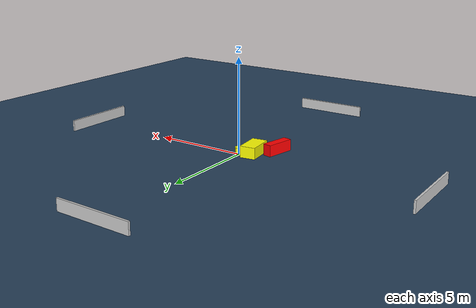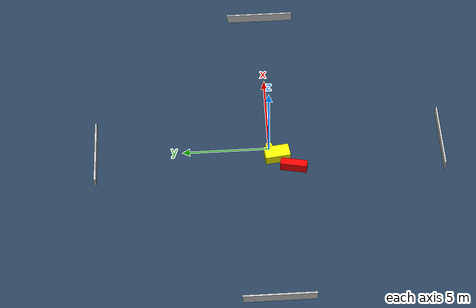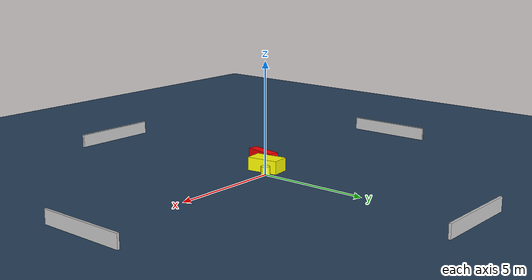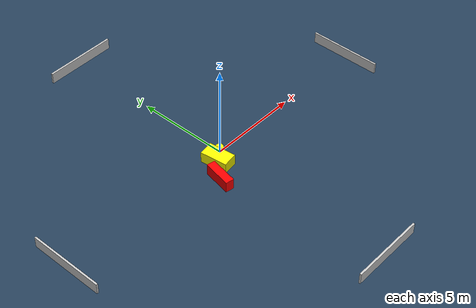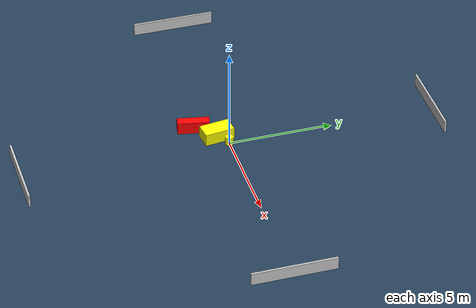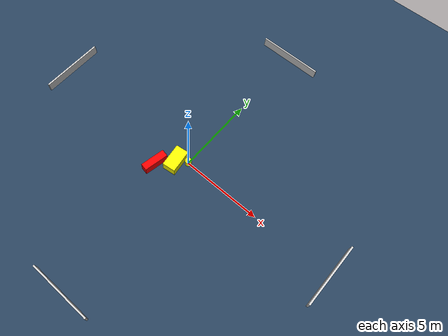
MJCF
<?xml version="1.0" ?>
<mujoco model="generated_environment">
  <option timestep="0.01" integrator="RK4" cone="elliptic"/>
  <default>
    <geom density="1"/>
  </default>
  <asset>
    <texture builtin="gradient" height="3072" name="skybox" rgb1="0.3 0.5 0.7" rgb2="0 0 0" type="skybox" width="512"/>
    <texture builtin="checker" height="300" name="groundplane" rgb1="0.2 0.3 0.4" rgb2="0.1 0.2 0.3" type="2d" width="300"/>
    <material name="groundplane" reflectance="0.2" texrepeat="5 5" texture="groundplane"/>
  </asset>
  <worldbody>
    <light dir="0 0 -1" directional="true" pos="0 0 1.5"/>
    <geom condim="3" friction="0.5 0.005 0.001" material="groundplane" name="floor" pos="0 0 0" size="0 0 0.05" type="plane"/>
    <body name="walls">
      <geom name="wall_1" condim="4" pos="-10.0 0.0 0.3" rgba="0.800000011920929 0.800000011920929 0.800000011920929 1.0" size="0.05 2.0 0.3" type="box"/>
      <geom name="wall_2" condim="4" pos="10.0 0.0 0.3" rgba="0.800000011920929 0.800000011920929 0.800000011920929 1.0" size="0.05 2.0 0.3" type="box"/>
      <geom name="wall_3" condim="4" pos="0.0 -10.0 0.3" rgba="0.800000011920929 0.800000011920929 0.800000011920929 1.0" size="2.0 0.05 0.3" type="box"/>
      <geom name="wall_4" condim="4" pos="0.0 10.0 0.3" rgba="0.800000011920929 0.800000011920929 0.800000011920929 1.0" size="2.0 0.05 0.3" type="box"/>
    </body>
    <body name="robot">
      <joint name="joint_x" type="slide" pos="0 0 0" axis="1 0 0"/>
      <joint name="joint_y" type="slide" pos="0 0 0" axis="0 1 0"/>
      <geom name="robot" type="cylinder" pos="0.0 0.0 0.2" size="0.2 0.2 0.0" mass="5.0" friction="1.0 0.005 0.0001" condim="4" rgba="1.0 1.0 0.0 1.0"/>
    </body>
    <body name="obstacle_1_movable">
      <geom name="obstacle_1_movable" condim="4" pos="-0.6055831266613995 -0.43317213248291164 0.3" euler="0 0 7.318227586818171" friction="0.0 0.005 0.001" rgba="1.0 1.0 0.0 1.0" size="0.4054834155967124 0.7243433479660843 0.3" type="box" mass="0.1"/>
      <joint type="free"/>
    </body>
    <body name="obstacle_2_static">
      <geom name="obstacle_2_static" condim="4" pos="-1.4458079702305653 -1.3456494201301978 0.3" euler="0 0 168.8836357642112" friction="0.0 0.005 0.001" rgba="1.0 0.0 0.0 1.0" size="0.2248317103501621 0.7637639440875197 0.3" type="box"/>
    </body>
  </worldbody>
  <actuator>
    <motor name="actuator_x" joint="joint_x" gear="1" ctrlrange="-1 1"/>
    <motor name="actuator_y" joint="joint_y" gear="1" ctrlrange="-1 1"/>
  </actuator>
</mujoco>
